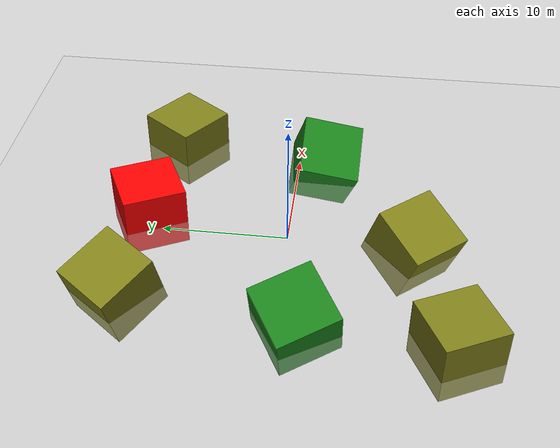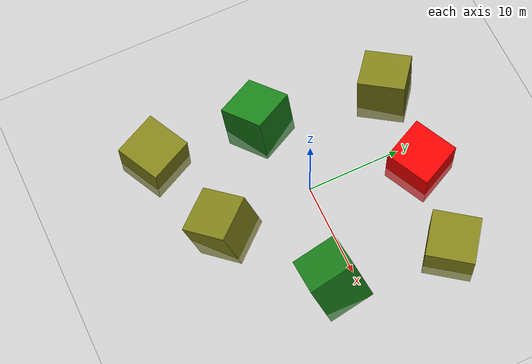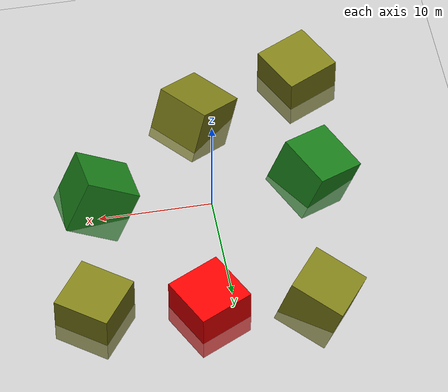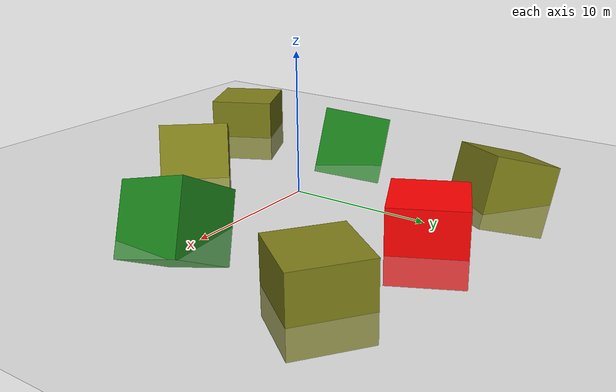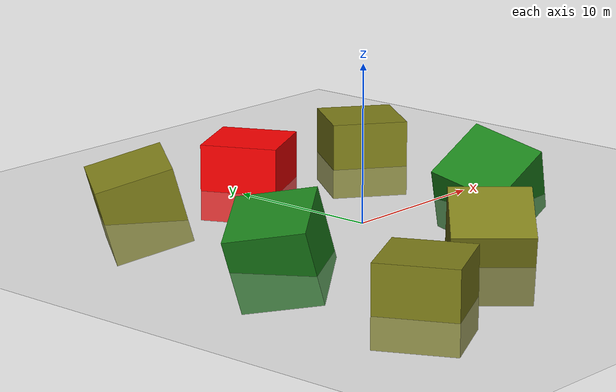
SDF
<sdf version="1.8">
 <world name="demo">
  <plugin filename="ignition-gazebo-physics-system" name="gz::sim::systems::Physics"/>
  <plugin filename="ignition-gazebo-sensors-system" name="gz::sim::systems::Sensors">
   <render_engine>ogre2</render_engine>
  </plugin>
  <plugin filename="ignition-gazebo-scene-broadcaster-system" name="gz::sim::systems::SceneBroadcaster"/>
  <plugin filename="ignition-gazebo-user-commands-system" name="gz::sim::systems::UserCommands"/>
  <scene><grid>false</grid></scene>
  <light name="sun" type="directional">
   <pose>0 0 10 0 0 0</pose>
   <diffuse>0.8 0.8 0.8 1</diffuse>
   <specular>0.2 0.2 0.2 1</specular>
   <attenuation>
    <range>1000</range>
    <constant>0.9</constant>
    <linear>0.01</linear>
    <quadratic>0.001</quadratic>
   </attenuation>
   <direction>-0.5 0.1 -0.9</direction>
  </light>
  <model name="ground_plane">
   <static>true</static>
   <link name="link">
    <collision name="collision">
     <geometry><plane><normal>0 0 1</normal><size>100 100</size></plane></geometry>
    </collision>
    <visual name="visual">
     <geometry><plane><normal>0 0 1</normal><size>100 100</size></plane></geometry>
     <material>
      <ambient>0.8 0.8 0.8 1</ambient>
      <diffuse>0.8 0.8 0.8 1</diffuse>
      <specular>0.8 0.8 0.8 1</specular>
     </material>
    </visual>
   </link>
  </model>
  <model name="box1">
   <pose>2.22393 11.5306 0.5 0 0 -1.11002</pose>
   <link name="box_link">
    <inertial>
     <inertia><ixx>0.16666</ixx><ixy>0</ixy><ixz>0</ixz><iyy>0.16666</iyy><iyz>0</iyz><izz>0.16666</izz></inertia>
     <mass>1</mass>
    </inertial>
    <collision name="box_collision"><geometry><box><size>1 1 1</size></box></geometry></collision>
    <visual name="box_visual">
     <geometry><box><size>5 5 5</size></box></geometry>
     <material><ambient>1 0 0 1</ambient><diffuse>1 0 0 1</diffuse><specular>1 0 0 1</specular></material>
    </visual>
   </link>
   <static>false</static>
  </model>
  <model name="box2">
   <pose>11.8547 10.1613 0.5 0 0 -0.634571</pose>
   <link name="box_link">
    <inertial>
     <inertia><ixx>0.16666</ixx><ixy>0</ixy><ixz>0</ixz><iyy>0.16666</iyy><iyz>0</iyz><izz>0.16666</izz></inertia>
     <mass>1</mass>
    </inertial>
    <collision name="box_collision"><geometry><box><size>1 1 1</size></box></geometry></collision>
    <visual name="box_visual">
     <geometry><box><size>5 5 5</size></box></geometry>
     <material>
      <ambient>0.8 0.5 0.2 1</ambient>
      <diffuse>0.5 0.5 0.1 1</diffuse>
      <specular>0.2 0 0.3 1</specular>
     </material>
    </visual>
   </link>
   <static>false</static>
  </model>
  <model name="box3">
   <pose>-7.21004 12.1553 0.5 0.08991 -0.275178 -0.654503</pose>
   <link name="box_link">
    <inertial>
     <inertia><ixx>0.16666</ixx><ixy>0</ixy><ixz>0</ixz><iyy>0.16666</iyy><iyz>0</iyz><izz>0.16666</izz></inertia>
     <mass>1</mass>
    </inertial>
    <collision name="box_collision"><geometry><box><size>1 1 1</size></box></geometry></collision>
    <visual name="box_visual">
     <geometry><box><size>5 5 5</size></box></geometry>
     <material>
      <ambient>0.8 0.5 0.2 1</ambient>
      <diffuse>0.5 0.5 0.1 1</diffuse>
      <specular>0.2 0 0.3 1</specular>
     </material>
    </visual>
   </link>
   <static>false</static>
  </model>
  <model name="box4">
   <pose>-10 -13.0084 0.5 0 -0 0.462238</pose>
   <link name="box_link">
    <inertial>
     <inertia><ixx>0.16666</ixx><ixy>0</ixy><ixz>0</ixz><iyy>0.16666</iyy><iyz>0</iyz><izz>0.16666</izz></inertia>
     <mass>1</mass>
    </inertial>
    <collision name="box_collision"><geometry><box><size>1 1 1</size></box></geometry></collision>
    <visual name="box_visual">
     <geometry><box><size>5 5 5</size></box></geometry>
     <material>
      <ambient>0.8 0.5 0.2 1</ambient>
      <diffuse>0.5 0.5 0.1 1</diffuse>
      <specular>0.2 0 0.3 1</specular>
     </material>
    </visual>
   </link>
   <static>false</static>
  </model>
  <model name="box5">
   <pose>-0 -9.82647 0.5 -0 -0.370218 0.718893</pose>
   <link name="box_link">
    <inertial>
     <inertia><ixx>0.16666</ixx><ixy>0</ixy><ixz>0</ixz><iyy>0.16666</iyy><iyz>0</iyz><izz>0.16666</izz></inertia>
     <mass>1</mass>
    </inertial>
    <collision name="box_collision"><geometry><box><size>1 1 1</size></box></geometry></collision>
    <visual name="box_visual">
     <geometry><box><size>5 5 5</size></box></geometry>
     <material>
      <ambient>0.8 0.5 0.2 1</ambient>
      <diffuse>0.5 0.5 0.1 1</diffuse>
      <specular>0.2 0 0.3 1</specular>
     </material>
    </visual>
   </link>
   <static>false</static>
  </model>
  <model name="box7">
   <pose>9.86928 -2.16368 0.5 0.451747 1.03047 0.492445</pose>
   <link name="box_link">
    <inertial>
     <inertia><ixx>0.16666</ixx><ixy>0</ixy><ixz>0</ixz><iyy>0.16666</iyy><iyz>0</iyz><izz>0.16666</izz></inertia>
     <mass>1</mass>
    </inertial>
    <collision name="box_collision"><geometry><box><size>1 1 1</size></box></geometry></collision>
    <visual name="box_visual">
     <geometry><box><size>5 5 5</size></box></geometry>
     <material>
      <ambient>0.3 0.1 0.2 1</ambient>
      <diffuse>0.1 0.5 0.1 1</diffuse>
      <specular>0.2 0 0.3 1</specular>
     </material>
    </visual>
   </link>
   <static>false</static>
  </model>
  <model name="box8">
   <pose>-9.29472 -1.57267 0.692839 -0.187196 -0.295861 0.576128</pose>
   <link name="box_link">
    <inertial>
     <inertia><ixx>0.16666</ixx><ixy>0</ixy><ixz>0</ixz><iyy>0.16666</iyy><iyz>0</iyz><izz>0.16666</izz></inertia>
     <mass>1</mass>
    </inertial>
    <collision name="box_collision"><geometry><box><size>1 1 1</size></box></geometry></collision>
    <visual name="box_visual">
     <geometry><box><size>5 5 5</size></box></geometry>
     <material>
      <ambient>0.3 0.1 0.2 1</ambient>
      <diffuse>0.1 0.5 0.1 1</diffuse>
      <specular>0.2 0 0.3 1</specular>
     </material>
    </visual>
   </link>
   <static>false</static>
  </model>
 </world>
</sdf>
